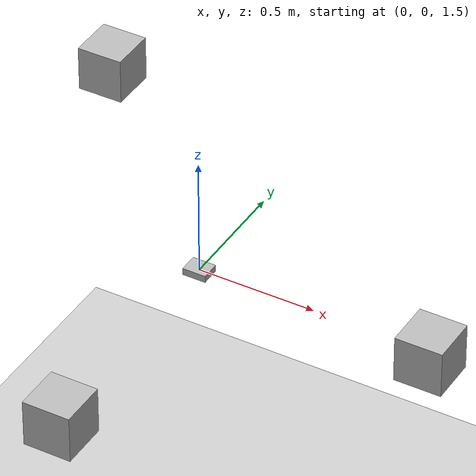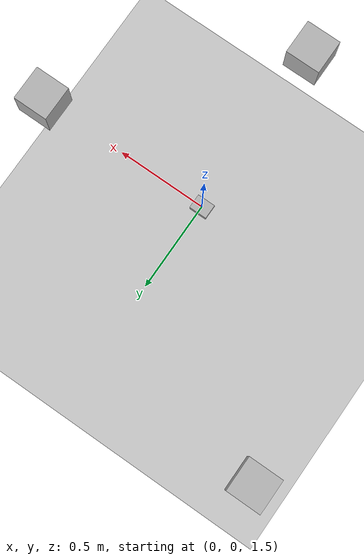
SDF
<sdf version="1.5">
 <world name="default">
  <include><uri>model://sun</uri></include>
  <include><uri>model://ground_plane</uri></include>
  <include><uri>model://asphalt_plane</uri></include>
  <physics name="default_physics" default="0" type="ode">
   <gravity>0 0 -9.8066</gravity>
   <ode>
    <solver>
     <type>quick</type>
     <iters>10</iters>
     <sor>1.3</sor>
     <use_dynamic_moi_rescaling>0</use_dynamic_moi_rescaling>
    </solver>
    <constraints>
     <cfm>0</cfm>
     <erp>0.2</erp>
     <contact_max_correcting_vel>100</contact_max_correcting_vel>
     <contact_surface_layer>0.001</contact_surface_layer>
    </constraints>
   </ode>
   <max_step_size>0.004</max_step_size>
   <real_time_factor>1</real_time_factor>
   <real_time_update_rate>250</real_time_update_rate>
   <magnetic_field>6.0e-6 2.3e-5 -4.2e-5</magnetic_field>
  </physics>
  <model name="uwb_anchor0">
   <pose>0 0 1.5 0 0 0</pose>
   <static>1</static>
   <link name="link">
    <visual name="visual"><geometry><box><size>0.1 0.08 0.03</size></box></geometry></visual>
   </link>
  </model>
  <model name="uwb_anchor1">
   <pose>0 -1 1.5 0 0 0</pose>
   <static>1</static>
   <link name="link">
    <visual name="visual"><geometry><box><size>0.2 0.2 0.2</size></box></geometry></visual>
   </link>
  </model>
  <model name="uwb_anchor2">
   <pose>1 0 1.5 0 0 0</pose>
   <static>1</static>
   <link name="link">
    <visual name="visual"><geometry><box><size>0.2 0.2 0.2</size></box></geometry></visual>
   </link>
  </model>
  <model name="uwb_anchor3">
   <pose>-1 1 1.5 0 0 0</pose>
   <static>1</static>
   <link name="link">
    <visual name="visual"><geometry><box><size>0.2 0.2 0.2</size></box></geometry></visual>
   </link>
  </model>
 </world>
</sdf>
